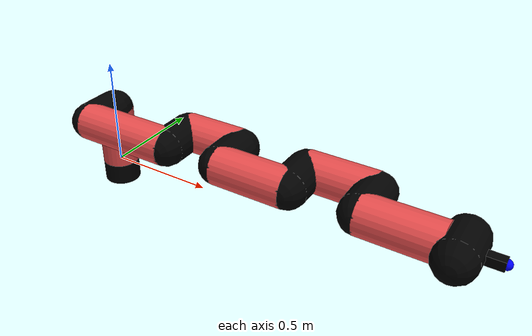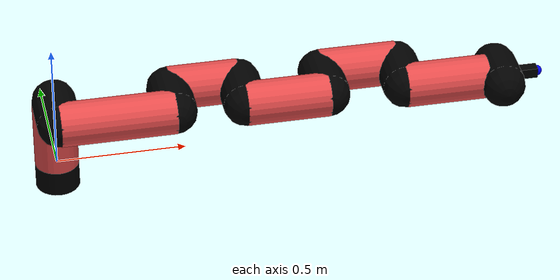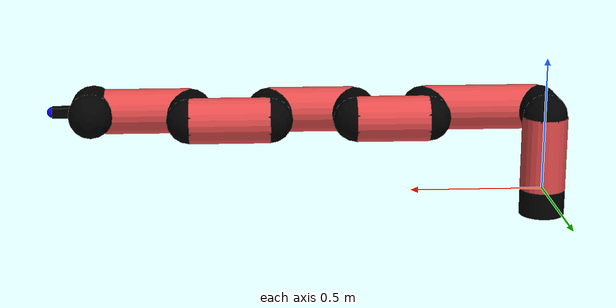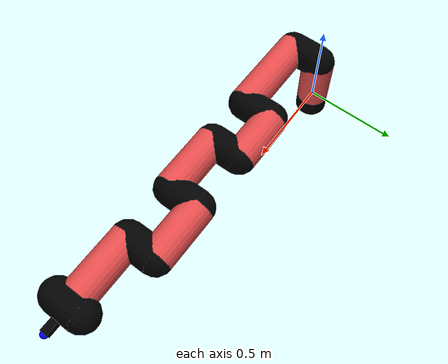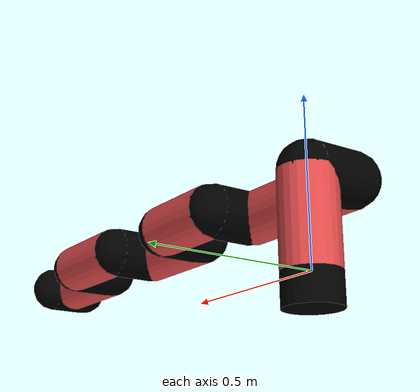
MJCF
<mujoco model="manipulator">
		<compiler angle="degree" coordinate="local" inertiafromgeom="auto" meshdir="meshes/"/>
		<option gravity="0 0 0" integrator="RK4" iterations="30" timestep="0.01"/>

		<default>
		<joint armature="1" limited="true" stiffness="10" damping="15" frictionloss="5.0"/>
		<geom conaffinity="1" condim="3" contype="1" friction=".5 .1 .1" margin="0.002"/>
		<motor ctrllimited="true"/>
		<position ctrllimited="true"/>
		</default>

		<asset>
		<texture builtin="gradient" height="100" rgb1="1.0 1.0 1.0" rgb2="1.0 1.0 1.0" type="skybox" width="100"/>
		<texture builtin="flat" height="32" name="arm_tex" rgb1="0.9 0.3 0.3" type="2d" width="32"/>
		<texture builtin="flat" height="32" name="gripper_tex" rgb1="0.0 0.0 0.0" type="cube" width="32"/>

		<material name="arm_mat" shininess="0.1" specular="0.1" texture="arm_tex"/>
		<material name="gripper_mat" shininess="1" specular="1" texture="gripper_tex"/>
		</asset>

		<worldbody>
		<light cutoff="45" diffuse=".8 .8 .8" dir="0 0.16 -1" directional="false" name="light" pos="0 -2.0 8.0" specular="0.3 0.3 0.3"/>

		<body name="base_link" pos="0 0 -0.1">
		<geom fromto="0 0 0 0 0 0.1" material="arm_mat" name="base_link" rgba="0.0 0.0 0.0 1" size="0.085" type="cylinder"/>
		</body>

		<body name="l1" pos="0 0 0">
<geom fromto="0 0 0 0 0 0.28" material="arm_mat" name="l1" rgba="0.9 0.3 0.3 1" size="0.085" type="cylinder"/>
<geom fromto="0 0 0.28 0 -0.16 0.28" material="arm_mat" name="l1_ex" rgba="0.0 0.0 0.0 1" size="0.085" type="capsule"/>
<joint axis="0 0 1" name="j1" pos="0 0 0" range="-90 90" damping="34.45" frictionloss="8.6"/>

<body name="l2" pos="0 -0.16 0.28">
<geom fromto="0 0 0 0.44 0 0" material="arm_mat" name="l2" rgba="0.9 0.3 0.3 1" size="0.085" type="cylinder"/>
<geom fromto="0.44 0 0 0.44 0.16 0" material="arm_mat" name="l2_ex" rgba="0.0 0.0 0.0 1" size="0.085" type="capsule"/>
<joint axis="0.0 1.0 0.0" name="j2" pos="0 0 0" range="-90 60" damping="26.76" frictionloss="8.25"/>

<body name="l3" pos="0.44 0.16 0">
<geom fromto="0 0 0 0.27 0 0" material="arm_mat" name="l3" rgba="0.9 0.3 0.3 1" size="0.085" type="cylinder"/>
<geom fromto="0.27 0 0 0.27 -0.16 0" material="arm_mat" name="l3_ex" rgba="0.0 0.0 0.0 1" size="0.085" type="capsule"/>
<joint axis="0.0 1.0 0.0" name="j3" pos="0 0 0" range="-30 60" damping="32.56" frictionloss="10.94"/>

<body name="l4" pos="0.27 -0.16 0">
<geom fromto="0 0 0 0.32 0 0" material="arm_mat" name="l4" rgba="0.9 0.3 0.3 1" size="0.085" type="cylinder"/>
<geom fromto="0.32 0 0 0.32 0.16 0" material="arm_mat" name="l4_ex" rgba="0.0 0.0 0.0 1" size="0.085" type="capsule"/>
<joint axis="0.0 1.0 0.0" name="j4" pos="0 0 0" range="-30 60" damping="32.73" frictionloss="7.99"/>

<body name="l5" pos="0.32 0.16 0">
<geom fromto="0 0 0 0.3 0 0" material="arm_mat" name="l5" rgba="0.9 0.3 0.3 1" size="0.085" type="cylinder"/>
<geom fromto="0.3 0 0 0.3 -0.16 0" material="arm_mat" name="l5_ex" rgba="0.0 0.0 0.0 1" size="0.085" type="capsule"/>
<joint axis="0.0 1.0 0.0" name="j5" pos="0 0 0" range="-30 60" damping="34.72" frictionloss="8.05"/>

<body name="l6" pos="0.3 -0.16 0">
<geom fromto="0 0 0 0.32 0 0" material="arm_mat" name="l6" rgba="0.9 0.3 0.3 1" size="0.085" type="cylinder"/>
<joint axis="0.0 1.0 0.0" name="j6" pos="0 0 0" range="-30 60" damping="27.11" frictionloss="12.42"/>

<body name="gripper" pos="0.32 0 0">
<geom fromto="0.05 -0.07 0 0.05 0.07 0" material="gripper_mat" name="gripper" rgba="0.0 0.0 0.0 1" size="0.085" type="capsule"/><joint axis="1 0 0" name="j7" pos="0 0 0" range="-90 90" damping="15" frictionloss="5.0"/><body name="finger" pos="0.1 0 0">
<geom fromto="0 0.0 0 0.1 0.0 0" material="gripper_mat" name="finger" rgba="0.0 0.0 0.0 1" size="0.020 0.06 0.06" type="box"/>
</body>
<site name="current" pos="0.2 0. 0.0" rgba="0. 0. 1.0 1" size="0.02" type="sphere"/>
</body>
</body>
</body>
</body>
</body>
</body>
</body>
</worldbody>
<actuator>
<motor ctrllimited="true" ctrlrange="-1.0 1.0" joint="j1" gear="84.15"/>
<motor ctrllimited="true" ctrlrange="-1.0 1.0" joint="j2" gear="89.68"/>
<motor ctrllimited="true" ctrlrange="-1.0 1.0" joint="j3" gear="82.17"/>
<motor ctrllimited="true" ctrlrange="-1.0 1.0" joint="j4" gear="90.9"/>
<motor ctrllimited="true" ctrlrange="-1.0 1.0" joint="j5" gear="62.3"/>
<motor ctrllimited="true" ctrlrange="-1.0 1.0" joint="j6" gear="72.25"/>
<motor ctrllimited="true" ctrlrange="-1.0 1.0" joint="j7" gear="80"/>
</actuator>
</mujoco>
